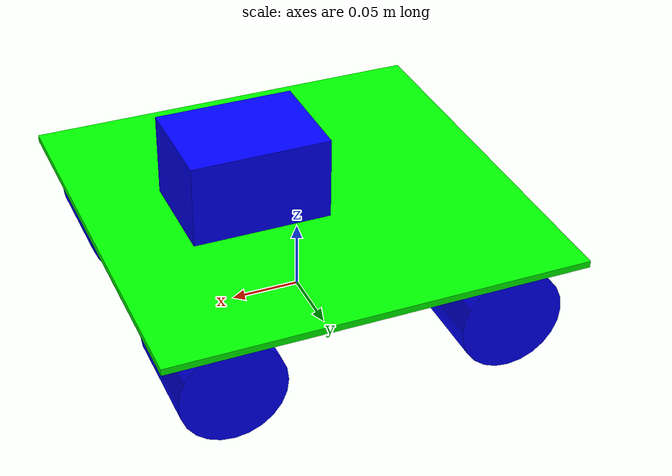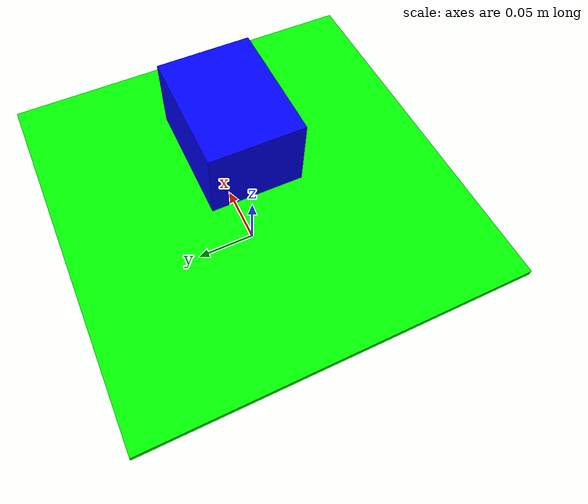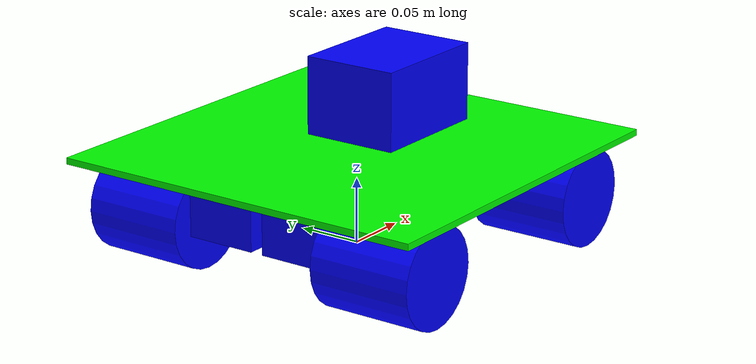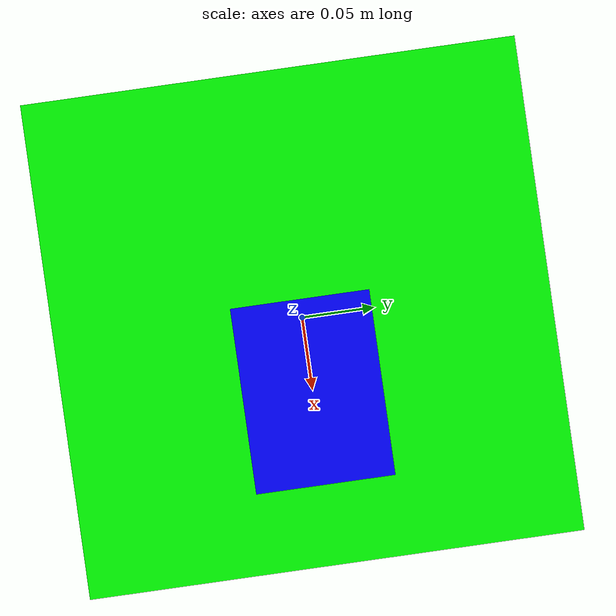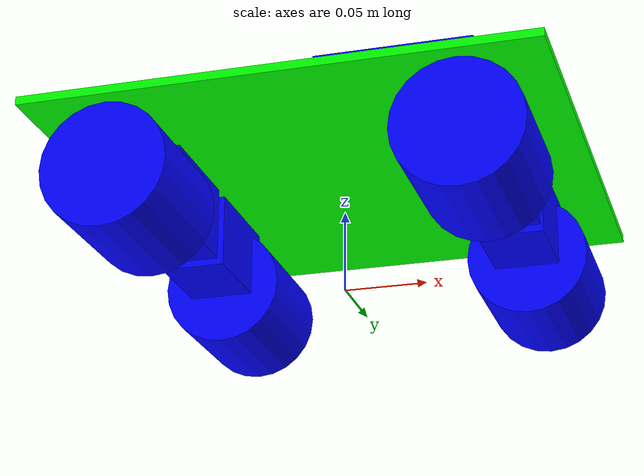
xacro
<?xml version="1.0"?>
<robot name="robot" xmlns:xacro="http://wiki.ros.org/xacro">

  <xacro:arg name="robot_type" default="diff"/>

  <xacro:property name="type" value="$(arg robot_type)" />

  <xacro:include filename="$(find basic_mobile_robot)/models/robotV1_desfription/base.xacro"/>
  <xacro:include filename="$(find basic_mobile_robot)/models/robotV1_desfription/motor.xacro"/>
  <xacro:include filename="$(find basic_mobile_robot)/models/robotV1_desfription/lidar.xacro"/>
  <xacro:include filename="$(find basic_mobile_robot)/models/robotV1_desfription/wheel.xacro"/>

  <link name="world_link" />

  <xacro:robot_base parent="world_link" child="first_base_link" xyz="0 0 0.075" rpy="0 0 0" />

  <xacro:robot_motor parent="first_base_link" child="front_left_motor_link" xyz="0.10 0.040 -0.025" rpy="0 0 0" />
  <xacro:robot_motor parent="first_base_link" child="front_right_motor_link" xyz="0.10 -0.040 -0.025" rpy="0 0 0" />
  <xacro:robot_motor parent="first_base_link" child="back_left_motor_link" xyz="-0.10 0.040 -0.025" rpy="0 0 0" />
  <xacro:robot_motor parent="first_base_link" child="back_right_motor_link" xyz="-0.10 -0.040 -0.025" rpy="0 0 0" />

  <xacro:wheel parent="front_left_motor_link" child="front_left_wheel_link" xyz="0.0 0.060 -0.015" rpy="1.57 0 0" robot_type="$(arg robot_type)" />
  <xacro:wheel parent="front_right_motor_link" child="front_right_wheel_link" xyz="0.0 -0.060 -0.015" rpy="1.57 0 0" robot_type="$(arg robot_type)" />
  <xacro:wheel parent="back_left_motor_link" child="back_left_wheel_link" xyz="0.0 0.060 -0.015" rpy="1.57 0 0" robot_type="$(arg robot_type)" />
  <xacro:wheel parent="back_right_motor_link" child="back_right_wheel_link" xyz="0.0 -0.060 -0.015" rpy="1.57 0 0" robot_type="$(arg robot_type)" />

  <xacro:lidar parent="first_base_link" child="lidar_link" xyz="0.04 0.0 0.035" rpy="0 0 0" />

  <xacro:if value="${type == 'omni'}">
    <gazebo>
      <plugin name="object_controller" filename="libgazebo_ros_planar_move.so">
        <ros>
          <argument>odom:=odom/unfiltered</argument>
        </ros>
        <command_topic>cmd_vel</command_topic>
        <odometry_topic>odom/unfiltered</odometry_topic>
        <odometry_frame>odom</odometry_frame>
        <odometry_rate>20.0</odometry_rate>
        <robot_base_frame>world_link</robot_base_frame>
        <publish_odom>true</publish_odom>
        <publish_odom_tf>true</publish_odom_tf>
      </plugin>
    </gazebo>
  </xacro:if>

  <xacro:if value="${type == 'diff'}">
   <gazebo>
      <plugin name="skid_steer_drive" filename="libgazebo_ros_diff_drive.so">

         <num_wheel_pairs>2</num_wheel_pairs>

        <left_joint>front_left_motor_link_to_front_left_wheel_link_joint</left_joint>
        <right_joint>front_right_motor_link_to_front_right_wheel_link_joint</right_joint>
        <left_joint>back_left_motor_link_to_back_left_wheel_link_joint</left_joint>
        <right_joint>back_right_motor_link_to_back_right_wheel_link_joint</right_joint>

        <wheel_separation>0.215</wheel_separation>
        <wheel_separation>0.215</wheel_separation>

        <wheel_diameter>0.035</wheel_diameter>
        <wheel_diameter>0.035</wheel_diameter>

        <max_wheel_torque>50</max_wheel_torque>
        <max_wheel_acceleration>5.0</max_wheel_acceleration>

        <odometry_frame>odom</odometry_frame>
        <robot_base_frame>world_link</robot_base_frame>

        <publish_odom>true</publish_odom>
        <publish_odom_tf>true</publish_odom_tf>
        <publish_wheel_tf>true</publish_wheel_tf>
      </plugin>
     </gazebo>
  </xacro:if>

</robot>

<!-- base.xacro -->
<robot xmlns:xacro="http://wiki.ros.org/xacro">

  <xacro:macro name="robot_base" params="parent child xyz rpy">

    <link name="${child}">
      <visual>
        <geometry>
          <box size="0.3 0.3 0.005" />
        </geometry>
        <material name="green">
          <color rgba="0.0 1.0 0.0 1.0" />
        </material>
      </visual>
      <collision>
        <geometry>
          <box size="0.3 0.3 0.005" />
        </geometry>
        <surface>
          <friction>
            <ode>
              <mu>0.9</mu> <!-- Coeficiente de atrito estático -->
              <mu2>0.7</mu2> <!-- Coeficiente de atrito dinâmico -->
            </ode>
          </friction>
          <bounce>
            <restitution_coefficient>0.1</restitution_coefficient> <!-- Coeficiente de restituição -->
            <threshold>100.0</threshold> <!-- Limite de impacto para ativar a restituição -->
          </bounce>
        </surface>
      </collision>
      <inertial>
        <mass value="1.0" /> <!-- Massa ajustada para um valor mais realista -->
        <inertia ixx="0.02" ixy="0.0" ixz="0.0" iyy="0.02" iyz="0.0" izz="0.01" />
      </inertial>
    </link>

    <joint name="${parent}_to_${child}_joint" type="fixed">
      <origin xyz="${xyz}" rpy="${rpy}" />
      <parent link="${parent}" />
      <child link="${child}" />
    </joint>

  </xacro:macro>
</robot>

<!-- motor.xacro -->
<robot xmlns:xacro="http://wiki.ros.org/xacro">

  <xacro:macro name="robot_motor" params="parent child xyz rpy">

    <link name="${child}">
      <visual>
        <geometry>
          <box size="0.04 0.07 0.045" />
        </geometry>
        <material name="blue">
          <color rgba="0.0 0.0 1 1" />
        </material>
      </visual>
      <collision>
        <geometry>
          <box size="0.04 0.07 0.045" />
        </geometry>
        <surface>
          <friction>
            <ode>
              <mu>0.4</mu> <!-- Coeficiente de atrito estático -->
              <mu2>0.4</mu2> <!-- Coeficiente de atrito dinâmico -->
            </ode>
          </friction>
          <bounce>
            <restitution_coefficient>0.2</restitution_coefficient> <!-- Coeficiente de restituição -->
            <threshold>100.0</threshold> <!-- Limite de impacto para ativar a restituição -->
          </bounce>
        </surface>
      </collision>
      <inertial>
        <mass value="0.3" /> <!-- Ajustado para um valor mais realista para um motor -->
        <inertia ixx="0.0015" ixy="0.0" ixz="0.0" iyy="0.0015" iyz="0.0" izz="0.0025" /> <!-- Valores de inércia ajustados -->
      </inertial>
    </link>

    <joint name="${parent}_to_${child}_joint" type="fixed">
      <origin xyz="${xyz}" rpy="${rpy}" />
      <parent link="${parent}" />
      <child link="${child}" />
    </joint>

  </xacro:macro>

</robot>

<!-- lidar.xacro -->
<robot xmlns:xacro="http://wiki.ros.org/xacro">

  <xacro:macro name="lidar" params="parent child xyz rpy">

    <link name="${child}">
      <visual>
        <geometry>
          <box size="0.10 0.075 0.060" />
        </geometry>
        <material name="blue">
          <color rgba="0.0 0.0 1 1" />
        </material>
      </visual>
      <collision>
        <geometry>
          <box size="0.10 0.075 0.060" />
        </geometry>
        <surface>
          <friction>
            <ode>
              <mu>0.5</mu> <!-- Coeficiente de atrito estático -->
              <mu2>0.5</mu2> <!-- Coeficiente de atrito dinâmico -->
            </ode>
          </friction>
          <bounce>
            <restitution_coefficient>0.1</restitution_coefficient> <!-- Coeficiente de restituição -->
            <threshold>100.0</threshold> <!-- Limite de impacto para ativar a restituição -->
          </bounce>
        </surface>
      </collision>
      <inertial>
        <mass value="0.05" /> <!-- Ajustado para um valor mais realista para um LIDAR -->
        <inertia ixx="0.0002" ixy="0.0" ixz="0.0" iyy="0.0006" iyz="0.0" izz="0.0008" /> <!-- Valores de inércia ajustados -->
      </inertial>
    </link>

    <joint name="${parent}_to_${child}_joint" type="fixed">
      <origin xyz="${xyz}" rpy="${rpy}" />
      <parent link="${parent}" />
      <child link="${child}" />
    </joint>

  </xacro:macro>

</robot>

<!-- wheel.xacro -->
<robot xmlns:xacro="http://wiki.ros.org/xacro">

  <xacro:macro name="wheel" params="parent child xyz rpy robot_type">

    <link name="${child}">
      <visual>
        <geometry>
          <cylinder radius="0.0375" length="0.08"/>
        </geometry>
        <material name="blue">
          <color rgba="0.0 0.0 1 1" />
        </material>
      </visual>
      <collision>
        <geometry>
          <cylinder radius="0.0375" length="0.08"/>
        </geometry>
        <surface>
          <friction>
            <ode>
              <mu>0.5</mu> <!-- Coeficiente de atrito estático -->
              <mu2>0.5</mu2> <!-- Coeficiente de atrito dinâmico -->
            </ode>
          </friction>
          <bounce>
            <restitution_coefficient>0.1</restitution_coefficient> <!-- Coeficiente de restituição -->
            <threshold>100.0</threshold> <!-- Limite de impacto para ativar a restituição -->
          </bounce>
        </surface>
      </collision>
      <inertial>
        <mass value="0.2" /> <!-- Ajustado para refletir um valor mais realista para uma roda -->
        <inertia ixx="0.0007" ixy="0" ixz="0" iyy="0.0012" iyz="0.0" izz="0.0007" /> <!-- Valores de inércia ajustados -->
      </inertial>
    </link>

    <xacro:if value="${robot_type == 'omni'}">
      <joint name="${parent}_to_${child}_joint" type="fixed">
        <axis xyz="0.0 0.0 1"/>
        <origin xyz="${xyz}" rpy="${rpy}" />
        <parent link="${parent}" />
        <child link="${child}" />
      </joint>
    </xacro:if>

    <xacro:if value="${robot_type == 'diff'}">
      <joint name="${parent}_to_${child}_joint" type="continuous">
        <axis xyz="0.0 0.0 1"/>
        <origin xyz="${xyz}" rpy="${rpy}" />
        <parent link="${parent}" />
        <child link="${child}" />
      </joint>
    </xacro:if>

  </xacro:macro>

</robot>
